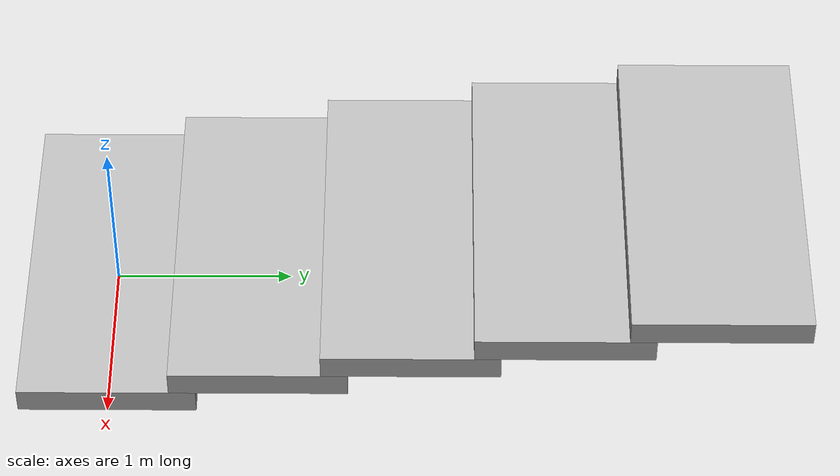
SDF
<?xml version="1.0" ?>
<sdf version="1.6">
  <model name="stairs">
    <static>true</static>
    <link name="link">
      <!-- Define the first step -->
      <collision name="collision_1">
        <geometry>
          <box>
            <size>2 1 0.15</size>
          </box>
        </geometry>
        <pose>0 0 0.075 0 0 0</pose>
      </collision>
      <visual name="visual_1">
        <geometry>
          <box>
            <size>2 1 0.15</size>
          </box>
        </geometry>
        <pose>0 0 0.075 0 0 0</pose>
      </visual>

      <!-- Define the second step -->
      <collision name="collision_2">
        <geometry>
          <box>
            <size>2 1 0.15</size>
          </box>
        </geometry>
        <pose>0 0.85 0.225 0 0 0</pose>
      </collision>
      <visual name="visual_2">
        <geometry>
          <box>
            <size>2 1 0.15</size>
          </box>
        </geometry>
        <pose>0 0.85 0.225 0 0 0</pose>
      </visual>

      <!-- Define the third step -->
      <collision name="collision_3">
        <geometry>
          <box>
            <size>2 1 0.15</size>
          </box>
        </geometry>
        <pose>0 1.7 0.375 0 0 0</pose>
      </collision>
      <visual name="visual_3">
        <geometry>
          <box>
            <size>2 1 0.15</size>
          </box>
        </geometry>
        <pose>0 1.7 0.375 0 0 0</pose>
      </visual>

      <!-- Define the fourth step -->
      <collision name="collision_4">
        <geometry>
          <box>
            <size>2 1 0.15</size>
          </box>
        </geometry>
        <pose>0 2.55 0.525 0 0 0</pose>
      </collision>
      <visual name="visual_4">
        <geometry>
          <box>
            <size>2 1 0.15</size>
          </box>
        </geometry>
        <pose>0 2.55 0.525 0 0 0</pose>
      </visual>

      <!-- Define the fifth step -->
      <collision name="collision_5">
        <geometry>
          <box>
            <size>2 1 0.15</size>
          </box>
        </geometry>
        <pose>0 3.4 0.675 0 0 0</pose>
      </collision>
      <visual name="visual_5">
        <geometry>
          <box>
            <size>2 1 0.15</size>
          </box>
        </geometry>
        <pose>0 3.4 0.675 0 0 0</pose>
      </visual>
    </link>
  </model>
</sdf>
